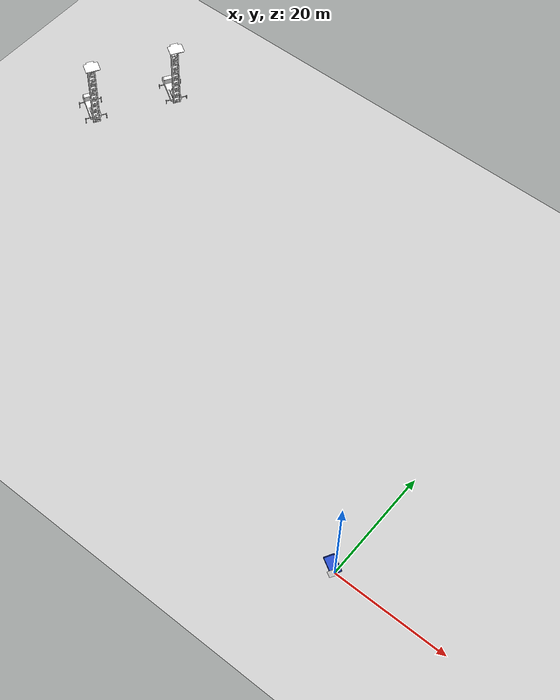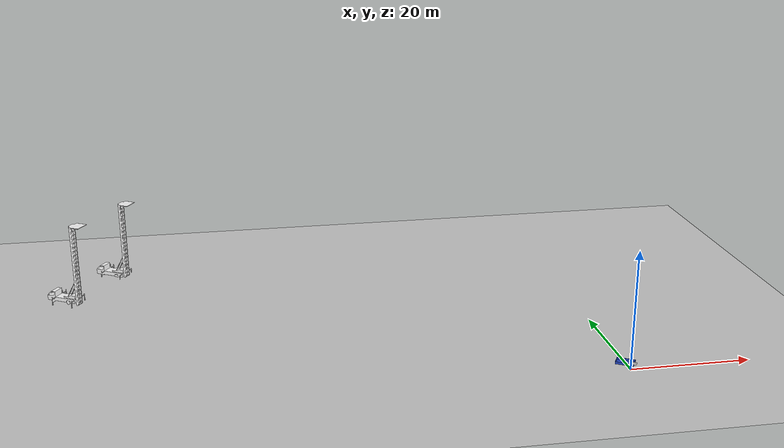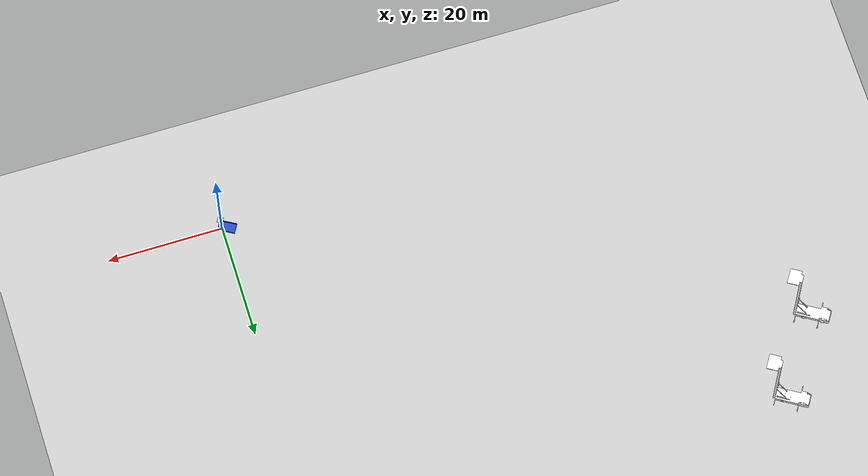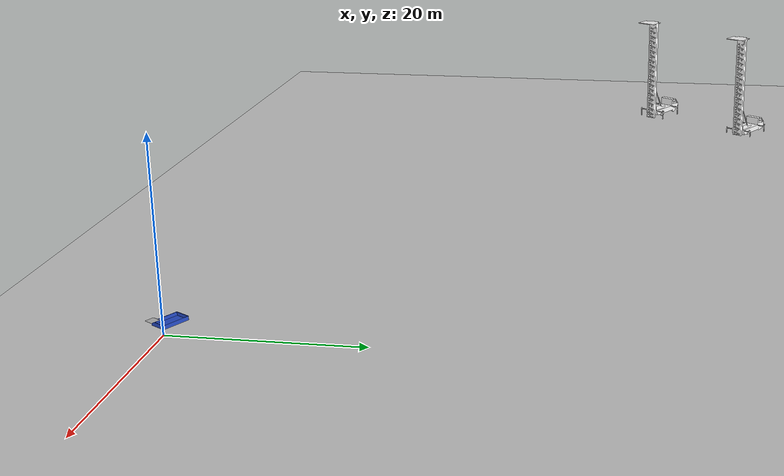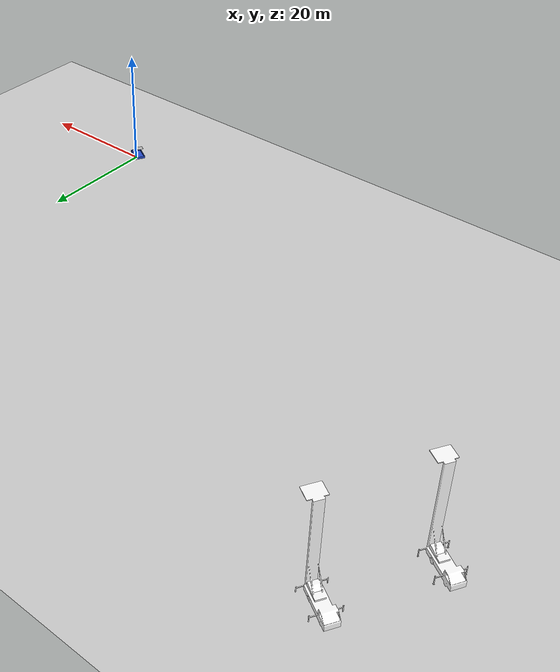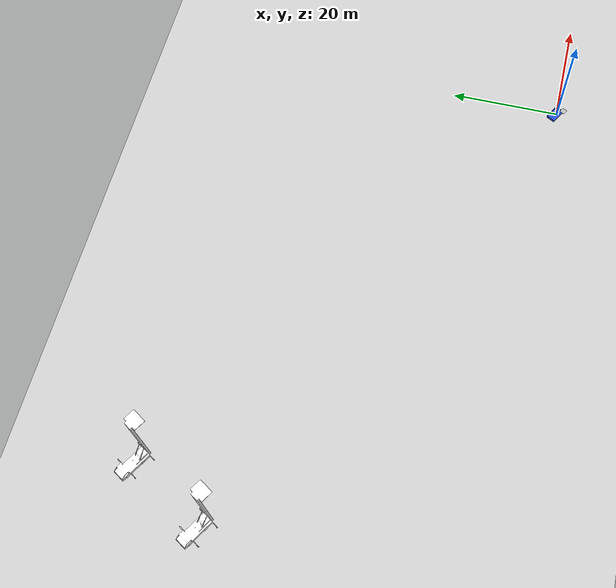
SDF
<sdf version="1.5">
 <world name="empty">
  <spherical_coordinates>
   <surface_model>EARTH_WGS84</surface_model>
   <latitude_deg>36.5806</latitude_deg>
   <longitude_deg>127.528</longitude_deg>
   <elevation>98.9891</elevation>
   <heading_deg>2.35</heading_deg>
  </spherical_coordinates>
  <physics name="default_physics" default="0" type="ode">
   <gravity>0 0 -9.8066</gravity>
   <ode>
    <solver>
     <type>quick</type>
     <iters>10</iters>
     <sor>1.3</sor>
     <use_dynamic_moi_rescaling>0</use_dynamic_moi_rescaling>
    </solver>
    <constraints>
     <cfm>0</cfm>
     <erp>0.2</erp>
     <contact_max_correcting_vel>100</contact_max_correcting_vel>
     <contact_surface_layer>0.001</contact_surface_layer>
    </constraints>
   </ode>
   <max_step_size>0.004</max_step_size>
   <real_time_factor>1</real_time_factor>
   <real_time_update_rate>250</real_time_update_rate>
   <magnetic_field>6.0e-6 2.3e-5 -4.2e-5</magnetic_field>
  </physics>
  <include><uri>model://sun</uri></include>
  <include><name>ground_plane_0</name><uri>model://ground_plane</uri></include>
  <include>
   <name>ground_plane_1</name>
   <pose>-127.813 77.0365 0 0 -0 0</pose>
   <uri>model://ground_plane</uri>
  </include>
  <include>
   <name>ground_plane_2</name>
   <pose>-66.9237 45.3697 0 0 -0 0</pose>
   <uri>model://ground_plane</uri>
  </include>
  <include>
   <name>truck_0</name>
   <uri>model://truck_1</uri>
   <pose>-91 46 0.5 0 0 -0.55</pose>
   <static>true</static>
  </include>
  <include>
   <name>truck_1</name>
   <uri>model://truck_1</uri>
   <pose>-83 59 0 0 0 -0.55</pose>
   <static>true</static>
  </include>
  <include>
   <name>landing_point</name>
   <uri>model://landing_point</uri>
   <pose>0 -1 1 0 -0 1.05</pose>
   <static>true</static>
  </include>
  <include>
   <name>armarker</name>
   <uri>model://armarker</uri>
   <pose>0 -1 1.5 0 -0 1.05</pose>
   <static>true</static>
  </include>
 </world>
</sdf>

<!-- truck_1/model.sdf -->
<sdf version="1.6">
  <model name="truck">
    <link name="truck_link">
      <visual name="untitled">
        <geometry>
          <mesh>
            <uri>model://truck_1/meshes/model.dae</uri>
            <submesh>
              <name>untitled</name>
            </submesh>
          </mesh>
        </geometry>
        <material>
          <diffuse>1.0 1.0 1.0 1.0</diffuse>
          <specular>0.0 0.0 0.0 1.0</specular>
          <pbr>
            <metal/>
          </pbr>
        </material>
      </visual>
      <collision name="collision">
        <geometry>
          <mesh>
            <uri>model://truck_1/meshes/model.dae</uri>
          </mesh>
        </geometry>
        <surface/>
        <contact/>
        <collide_bitmask>0x01</collide_bitmask>
      </collision>
    </link>
   <static>true</static>
  </model>
  <static>true</static>
</sdf>

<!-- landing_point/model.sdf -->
<sdf version="1.6">
  <model name="landing_point">
    <link name="landing_point_link">
      <visual name="landing_point">
        <geometry>
          <mesh>
            <uri>model://landing_point/meshes/model.dae</uri>
            <submesh>
              <name>landing_point</name>
            </submesh>
          </mesh>
        </geometry>
        <material>
          <script>
            <name>Gazebo/Blue</name>
            <uri>file://media/materials/scripts/gazebo.material</uri>
          </script>
        </material>
      </visual>
      <collision name="collision">
        <geometry>
          <mesh>
            <uri>model://landing_point/meshes/model.dae</uri>
          </mesh>
        </geometry>
        <surface/>
        <contact/>
        <collide_bitmask>0x01</collide_bitmask>
      </collision>
    </link>
   <static>true</static>
  </model>
  <static>true</static>
</sdf>

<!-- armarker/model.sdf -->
<sdf version="1.6">
  <model name="armarker">
    <link name="armarker_link">
      <visual name="armarker">
        <geometry>
          <box>
            <size>1 1 0.001</size>
          </box>
        </geometry>
        <material>
          <script>
            <uri>model://armarker/materials/scripts</uri>
            <uri>model://armarker/materials/textures</uri>
            <name>landingmat/armarker</name>
          </script>
        </material>
      </visual>
      <collision name="collision">
        <geometry>
          <box>
            <size>1 1 0.001</size>
          </box>
        </geometry>
        <collide_bitmask>0x01</collide_bitmask>
      </collision>
    </link>
   <static>true</static>
  </model>
  <static>true</static>
</sdf>
